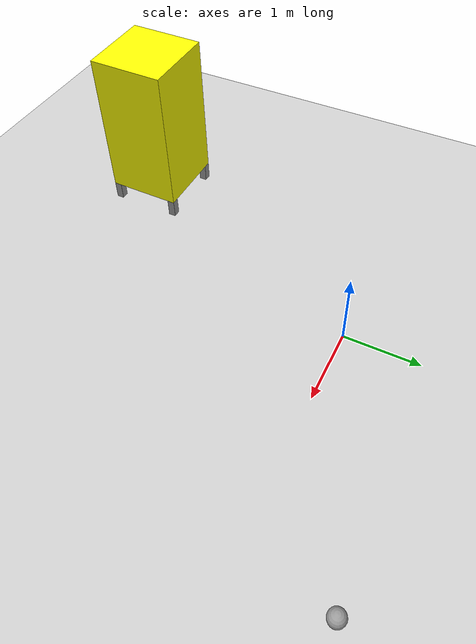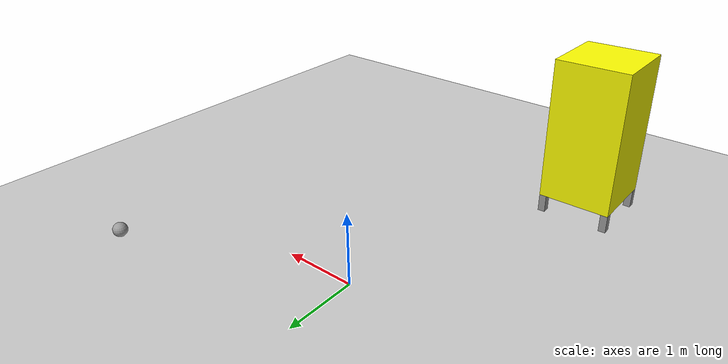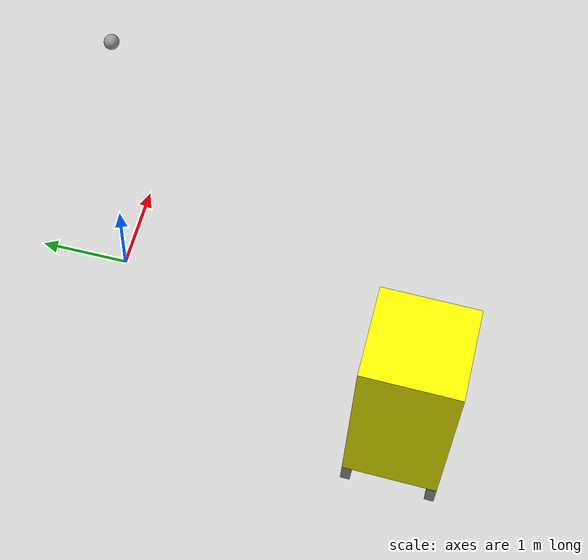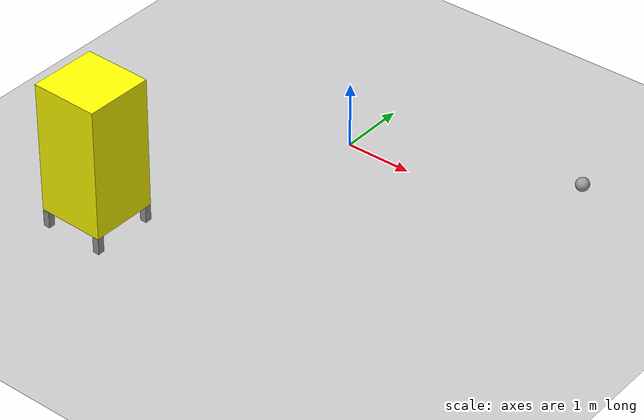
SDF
<sdf version="1.6">
 <world name="default">
  <model name="ground_plane">
   <static>1</static>
   <link name="link">
    <collision name="collision">
     <geometry><plane><normal>0 0 1</normal><size>100 100</size></plane></geometry>
     <surface>
      <contact><collide_bitmask>65535</collide_bitmask></contact>
      <friction><ode><mu>100</mu><mu2>50</mu2></ode></friction>
     </surface>
    </collision>
    <visual name="visual">
     <cast_shadows>0</cast_shadows>
     <geometry><plane><normal>0 0 1</normal><size>100 100</size></plane></geometry>
     <material>
      <script><uri>file://media/materials/scripts/gazebo.material</uri><name>Gazebo/Grey</name></script>
     </material>
    </visual>
   </link>
  </model>
  <model name="StoragePod_clone_3">
   <link name="link_2">
    <inertial>
     <mass>1</mass>
     <inertia>
      <ixx>0.166667</ixx>
      <ixy>0</ixy>
      <ixz>0</ixz>
      <iyy>0.166667</iyy>
      <iyz>0</iyz>
      <izz>0.166667</izz>
     </inertia>
    </inertial>
    <pose>-0.45 -0.45 -0.237 0 -0 0</pose>
    <visual name="visual">
     <geometry><box><size>0.1 0.1 0.25</size></box></geometry>
     <material>
      <lighting>1</lighting>
      <script><uri>file://media/materials/scripts/gazebo.material</uri><name>Gazebo/Grey</name></script>
      <shader type="pixel"><normal_map>__default__</normal_map></shader>
      <ambient>0.3 0.3 0.3 1</ambient>
      <diffuse>0.7 0.7 0.7 1</diffuse>
      <specular>0.01 0.01 0.01 1</specular>
      <emissive>0 0 0 1</emissive>
     </material>
    </visual>
    <collision name="collision">
     <geometry><box><size>0.1 0.1 0.25</size></box></geometry>
     <surface>
      <friction>
       <ode><mu>1</mu><mu2>1</mu2><fdir1>0 0 0</fdir1><slip1>0</slip1><slip2>0</slip2></ode>
       <torsional>
        <coefficient>1</coefficient>
        <patch_radius>0</patch_radius>
        <surface_radius>0</surface_radius>
        <use_patch_radius>1</use_patch_radius>
        <ode><slip>0</slip></ode>
       </torsional>
      </friction>
      <bounce><restitution_coefficient>0</restitution_coefficient><threshold>1e+06</threshold></bounce>
      <contact>
       <collide_without_contact>0</collide_without_contact>
       <collide_without_contact_bitmask>1</collide_without_contact_bitmask>
       <collide_bitmask>1</collide_bitmask>
       <ode>
        <soft_cfm>0</soft_cfm>
        <soft_erp>0.2</soft_erp>
        <kp>1e+13</kp>
        <kd>1</kd>
        <max_vel>0.01</max_vel>
        <min_depth>0</min_depth>
       </ode>
       <bullet>
        <split_impulse>1</split_impulse>
        <split_impulse_penetration_threshold>-0.01</split_impulse_penetration_threshold>
        <soft_cfm>0</soft_cfm>
        <soft_erp>0.2</soft_erp>
        <kp>1e+13</kp>
        <kd>1</kd>
       </bullet>
      </contact>
     </surface>
    </collision>
   </link>
   <link name="link_2_clone">
    <inertial>
     <mass>1</mass>
     <inertia>
      <ixx>0.166667</ixx>
      <ixy>0</ixy>
      <ixz>0</ixz>
      <iyy>0.166667</iyy>
      <iyz>0</iyz>
      <izz>0.166667</izz>
     </inertia>
    </inertial>
    <pose>0.45 0.45 -0.222 0 -0 0</pose>
    <visual name="visual">
     <geometry><box><size>0.1 0.1 0.25</size></box></geometry>
     <material>
      <lighting>1</lighting>
      <script><uri>file://media/materials/scripts/gazebo.material</uri><name>Gazebo/Grey</name></script>
      <shader type="pixel"><normal_map>__default__</normal_map></shader>
      <ambient>0.3 0.3 0.3 1</ambient>
      <diffuse>0.7 0.7 0.7 1</diffuse>
      <specular>0.01 0.01 0.01 1</specular>
      <emissive>0 0 0 1</emissive>
     </material>
    </visual>
    <collision name="collision">
     <geometry><box><size>0.1 0.1 0.25</size></box></geometry>
     <surface>
      <friction>
       <ode><mu>1</mu><mu2>1</mu2><fdir1>0 0 0</fdir1><slip1>0</slip1><slip2>0</slip2></ode>
       <torsional>
        <coefficient>1</coefficient>
        <patch_radius>0</patch_radius>
        <surface_radius>0</surface_radius>
        <use_patch_radius>1</use_patch_radius>
        <ode><slip>0</slip></ode>
       </torsional>
      </friction>
      <bounce><restitution_coefficient>0</restitution_coefficient><threshold>1e+06</threshold></bounce>
      <contact>
       <collide_without_contact>0</collide_without_contact>
       <collide_without_contact_bitmask>1</collide_without_contact_bitmask>
       <collide_bitmask>1</collide_bitmask>
       <ode>
        <soft_cfm>0</soft_cfm>
        <soft_erp>0.2</soft_erp>
        <kp>1e+13</kp>
        <kd>1</kd>
        <max_vel>0.01</max_vel>
        <min_depth>0</min_depth>
       </ode>
       <bullet>
        <split_impulse>1</split_impulse>
        <split_impulse_penetration_threshold>-0.01</split_impulse_penetration_threshold>
        <soft_cfm>0</soft_cfm>
        <soft_erp>0.2</soft_erp>
        <kp>1e+13</kp>
        <kd>1</kd>
       </bullet>
      </contact>
     </surface>
    </collision>
   </link>
   <link name="link_2_clone_0">
    <inertial>
     <mass>1</mass>
     <inertia>
      <ixx>0.166667</ixx>
      <ixy>0</ixy>
      <ixz>0</ixz>
      <iyy>0.166667</iyy>
      <iyz>0</iyz>
      <izz>0.166667</izz>
     </inertia>
    </inertial>
    <pose>0.45 -0.45 -0.222 0 -0 0</pose>
    <visual name="visual">
     <geometry><box><size>0.1 0.1 0.25</size></box></geometry>
     <material>
      <lighting>1</lighting>
      <script><uri>file://media/materials/scripts/gazebo.material</uri><name>Gazebo/Grey</name></script>
      <shader type="pixel"><normal_map>__default__</normal_map></shader>
      <ambient>0.3 0.3 0.3 1</ambient>
      <diffuse>0.7 0.7 0.7 1</diffuse>
      <specular>0.01 0.01 0.01 1</specular>
      <emissive>0 0 0 1</emissive>
     </material>
    </visual>
    <collision name="collision">
     <geometry><box><size>0.1 0.1 0.25</size></box></geometry>
     <surface>
      <friction>
       <ode><mu>1</mu><mu2>1</mu2><fdir1>0 0 0</fdir1><slip1>0</slip1><slip2>0</slip2></ode>
       <torsional>
        <coefficient>1</coefficient>
        <patch_radius>0</patch_radius>
        <surface_radius>0</surface_radius>
        <use_patch_radius>1</use_patch_radius>
        <ode><slip>0</slip></ode>
       </torsional>
      </friction>
      <bounce><restitution_coefficient>0</restitution_coefficient><threshold>1e+06</threshold></bounce>
      <contact>
       <collide_without_contact>0</collide_without_contact>
       <collide_without_contact_bitmask>1</collide_without_contact_bitmask>
       <collide_bitmask>1</collide_bitmask>
       <ode>
        <soft_cfm>0</soft_cfm>
        <soft_erp>0.2</soft_erp>
        <kp>1e+13</kp>
        <kd>1</kd>
        <max_vel>0.01</max_vel>
        <min_depth>0</min_depth>
       </ode>
       <bullet>
        <split_impulse>1</split_impulse>
        <split_impulse_penetration_threshold>-0.01</split_impulse_penetration_threshold>
        <soft_cfm>0</soft_cfm>
        <soft_erp>0.2</soft_erp>
        <kp>1e+13</kp>
        <kd>1</kd>
       </bullet>
      </contact>
     </surface>
    </collision>
   </link>
   <link name="link_2_clone_1">
    <inertial>
     <mass>1</mass>
     <inertia>
      <ixx>0.166667</ixx>
      <ixy>0</ixy>
      <ixz>0</ixz>
      <iyy>0.166667</iyy>
      <iyz>0</iyz>
      <izz>0.166667</izz>
     </inertia>
    </inertial>
    <pose>-0.45 0.45 -0.222 0 -0 0</pose>
    <visual name="visual">
     <geometry><box><size>0.1 0.1 0.25</size></box></geometry>
     <material>
      <lighting>1</lighting>
      <script><uri>file://media/materials/scripts/gazebo.material</uri><name>Gazebo/Grey</name></script>
      <shader type="pixel"><normal_map>__default__</normal_map></shader>
      <ambient>0.3 0.3 0.3 1</ambient>
      <diffuse>0.7 0.7 0.7 1</diffuse>
      <specular>0.01 0.01 0.01 1</specular>
      <emissive>0 0 0 1</emissive>
     </material>
    </visual>
    <collision name="collision">
     <geometry><box><size>0.1 0.1 0.25</size></box></geometry>
     <surface>
      <friction>
       <ode><mu>1</mu><mu2>1</mu2><fdir1>0 0 0</fdir1><slip1>0</slip1><slip2>0</slip2></ode>
       <torsional>
        <coefficient>1</coefficient>
        <patch_radius>0</patch_radius>
        <surface_radius>0</surface_radius>
        <use_patch_radius>1</use_patch_radius>
        <ode><slip>0</slip></ode>
       </torsional>
      </friction>
      <bounce><restitution_coefficient>0</restitution_coefficient><threshold>1e+06</threshold></bounce>
      <contact>
       <collide_without_contact>0</collide_without_contact>
       <collide_without_contact_bitmask>1</collide_without_contact_bitmask>
       <collide_bitmask>1</collide_bitmask>
       <ode>
        <soft_cfm>0</soft_cfm>
        <soft_erp>0.2</soft_erp>
        <kp>1e+13</kp>
        <kd>1</kd>
        <max_vel>0.01</max_vel>
        <min_depth>0</min_depth>
       </ode>
       <bullet>
        <split_impulse>1</split_impulse>
        <split_impulse_penetration_threshold>-0.01</split_impulse_penetration_threshold>
        <soft_cfm>0</soft_cfm>
        <soft_erp>0.2</soft_erp>
        <kp>1e+13</kp>
        <kd>1</kd>
       </bullet>
      </contact>
     </surface>
    </collision>
   </link>
   <link name="link_3">
    <inertial>
     <mass>1</mass>
     <inertia>
      <ixx>0.166667</ixx>
      <ixy>0</ixy>
      <ixz>0</ixz>
      <iyy>0.166667</iyy>
      <iyz>0</iyz>
      <izz>0.166667</izz>
     </inertia>
    </inertial>
    <pose>0 0 0.903 0 -0 0</pose>
    <visual name="visual">
     <geometry><box><size>1 1 2</size></box></geometry>
     <material>
      <lighting>1</lighting>
      <script><uri>file://media/materials/scripts/gazebo.material</uri><name>Gazebo/Grey</name></script>
      <shader type="pixel"><normal_map>__default__</normal_map></shader>
      <ambient>1 1 0 1</ambient>
      <diffuse>1 1 0 1</diffuse>
      <specular>0.01 0.01 0.01 1</specular>
      <emissive>0 0 0 1</emissive>
     </material>
    </visual>
    <collision name="collision">
     <geometry><box><size>1 1 2</size></box></geometry>
     <surface>
      <friction>
       <ode><mu>1</mu><mu2>1</mu2><fdir1>0 0 0</fdir1><slip1>0</slip1><slip2>0</slip2></ode>
       <torsional>
        <coefficient>1</coefficient>
        <patch_radius>0</patch_radius>
        <surface_radius>0</surface_radius>
        <use_patch_radius>1</use_patch_radius>
        <ode><slip>0</slip></ode>
       </torsional>
      </friction>
      <bounce><restitution_coefficient>0</restitution_coefficient><threshold>1e+06</threshold></bounce>
      <contact>
       <collide_without_contact>0</collide_without_contact>
       <collide_without_contact_bitmask>1</collide_without_contact_bitmask>
       <collide_bitmask>1</collide_bitmask>
       <ode>
        <soft_cfm>0</soft_cfm>
        <soft_erp>0.2</soft_erp>
        <kp>1e+13</kp>
        <kd>1</kd>
        <max_vel>0.01</max_vel>
        <min_depth>0</min_depth>
       </ode>
       <bullet>
        <split_impulse>1</split_impulse>
        <split_impulse_penetration_threshold>-0.01</split_impulse_penetration_threshold>
        <soft_cfm>0</soft_cfm>
        <soft_erp>0.2</soft_erp>
        <kp>1e+13</kp>
        <kd>1</kd>
       </bullet>
      </contact>
     </surface>
    </collision>
   </link>
   <joint name="link_3_JOINT_0" type="fixed">
    <parent>link_3</parent>
    <child>link_2_clone_0</child>
    <physics>
     <ode><limit><cfm>0</cfm><erp>0.2</erp></limit><suspension><cfm>0</cfm><erp>0.2</erp></suspension></ode>
    </physics>
   </joint>
   <joint name="link_3_JOINT_1" type="fixed">
    <parent>link_3</parent>
    <child>link_2</child>
    <physics>
     <ode><limit><cfm>0</cfm><erp>0.2</erp></limit><suspension><cfm>0</cfm><erp>0.2</erp></suspension></ode>
    </physics>
   </joint>
   <joint name="link_3_JOINT_2" type="fixed">
    <parent>link_3</parent>
    <child>link_2_clone</child>
    <physics>
     <ode><limit><cfm>0</cfm><erp>0.2</erp></limit><suspension><cfm>0</cfm><erp>0.2</erp></suspension></ode>
    </physics>
   </joint>
   <joint name="link_3_JOINT_3" type="fixed">
    <parent>link_3</parent>
    <child>link_2_clone_1</child>
    <physics>
     <ode><limit><cfm>0</cfm><erp>0.2</erp></limit><suspension><cfm>0</cfm><erp>0.2</erp></suspension></ode>
    </physics>
   </joint>
   <static>0</static>
   <pose>-1.49148 -3.48845 0.355285 -0.000213 0.016452 -0.012421</pose>
  </model>
  <model name="my_ball">
   <link name="link_0">
    <inertial>
     <mass>1</mass>
     <inertia><ixx>0.1</ixx><ixy>0</ixy><ixz>0</ixz><iyy>0.1</iyy><iyz>0</iyz><izz>0.1</izz></inertia>
    </inertial>
    <visual name="visual">
     <geometry><sphere><radius>0.1</radius></sphere></geometry>
     <material>
      <lighting>1</lighting>
      <script><uri>file://media/materials/scripts/gazebo.material</uri><name>Gazebo/Grey</name></script>
      <shader type="pixel"><normal_map>__default__</normal_map></shader>
      <ambient>1 1 1 1</ambient>
      <diffuse>1 1 1 1</diffuse>
      <specular>1 1 1 1</specular>
      <emissive>1 1 1 1</emissive>
     </material>
    </visual>
    <collision name="collision">
     <geometry><sphere><radius>0.1</radius></sphere></geometry>
     <surface>
      <friction>
       <ode><mu>1</mu><mu2>1</mu2><fdir1>0 0 0</fdir1><slip1>0</slip1><slip2>0</slip2></ode>
       <torsional>
        <coefficient>1</coefficient>
        <patch_radius>0</patch_radius>
        <surface_radius>0</surface_radius>
        <use_patch_radius>1</use_patch_radius>
        <ode><slip>0</slip></ode>
       </torsional>
      </friction>
      <bounce><restitution_coefficient>0</restitution_coefficient><threshold>1e+06</threshold></bounce>
      <contact>
       <collide_without_contact>0</collide_without_contact>
       <collide_without_contact_bitmask>1</collide_without_contact_bitmask>
       <collide_bitmask>1</collide_bitmask>
       <ode>
        <soft_cfm>0</soft_cfm>
        <soft_erp>0.2</soft_erp>
        <kp>1e+13</kp>
        <kd>1</kd>
        <max_vel>0.01</max_vel>
        <min_depth>0</min_depth>
       </ode>
       <bullet>
        <split_impulse>1</split_impulse>
        <split_impulse_penetration_threshold>-0.01</split_impulse_penetration_threshold>
        <soft_cfm>0</soft_cfm>
        <soft_erp>0.2</soft_erp>
        <kp>1e+13</kp>
        <kd>1</kd>
       </bullet>
      </contact>
     </surface>
    </collision>
   </link>
   <static>0</static>
   <pose>3.09292 1.14136 0.1 0 -0 0</pose>
  </model>
 </world>
</sdf>
